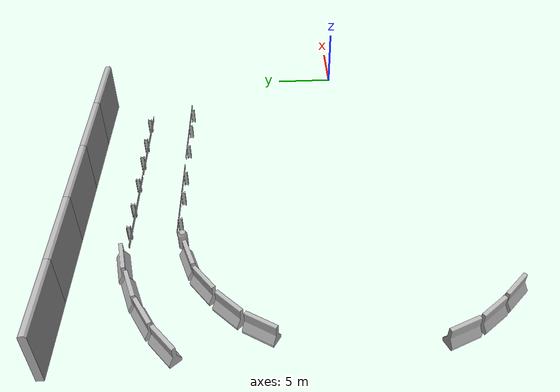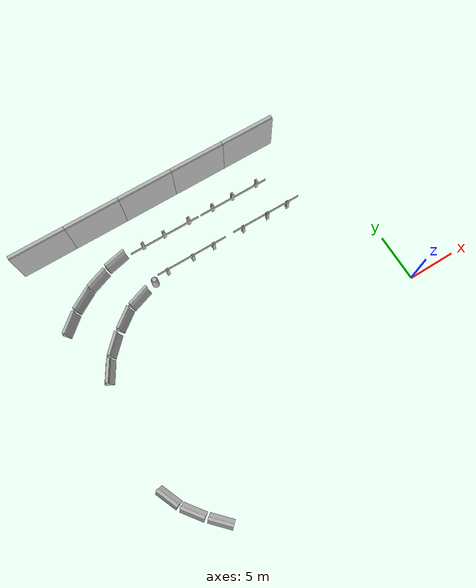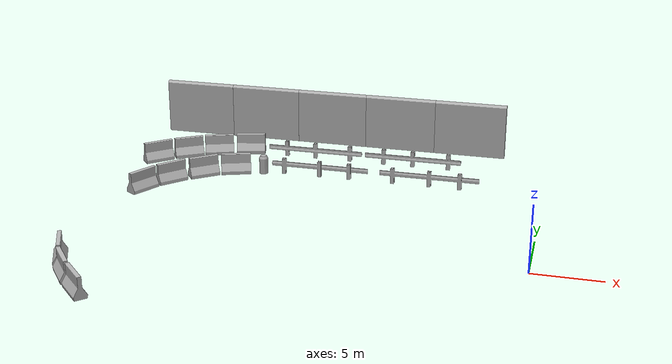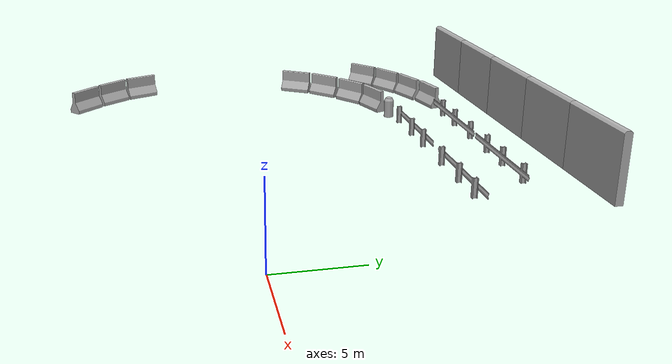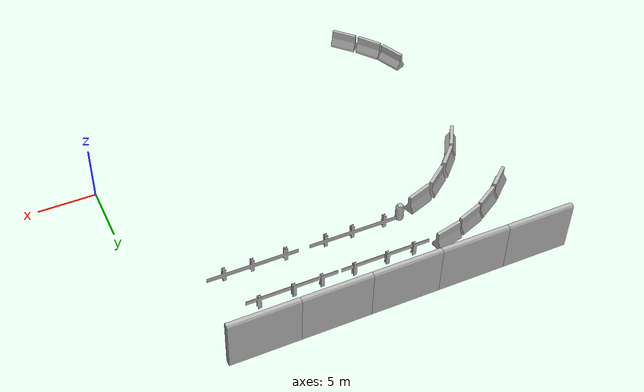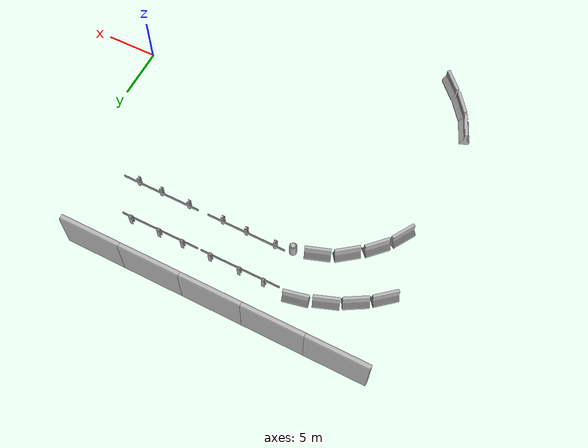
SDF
<sdf version="1.7">
 <world name="default">
  <model name="aws_robomaker_racetrack_CrashworthBucket_01_20">
   <frame name="aws_CrashworthBucket_01::__model__" attached_to="aws_CrashworthBucket_01::body">
    <pose relative_to="__model__">0 0 0 0 -0 0</pose>
   </frame>
   <link name="aws_CrashworthBucket_01::body">
    <pose relative_to="aws_CrashworthBucket_01::__model__">0 0 0 0 -0 0</pose>
    <inertial>
     <mass>5</mass>
     <inertia><ixx>1</ixx><ixy>0</ixy><ixz>0</ixz><iyy>1</iyy><iyz>0</iyz><izz>1</izz></inertia>
    </inertial>
    <visual name="visual">
     <geometry>
      <mesh>
       <uri>file://models/aws_robomaker_racetrack_CrashworthBucket_01/meshes/aws_CrashworthBucket_01_visual.DAE</uri>
      </mesh>
     </geometry>
     <material><shader type="pixel"><normal_map>__default__</normal_map></shader></material>
     <meta><layer>0</layer></meta>
    </visual>
    <collision name="collision_0">
     <geometry>
      <mesh>
       <uri>file://models/aws_robomaker_racetrack_CrashworthBucket_01/meshes/aws_CrashworthBucket_01_collision.DAE</uri>
       <scale>1 1 1</scale>
      </mesh>
     </geometry>
     <surface>
      <friction>
       <ode><mu>1</mu><mu2>1</mu2><fdir1>0 0 0</fdir1><slip1>0</slip1><slip2>0</slip2></ode>
       <torsional>
        <coefficient>1</coefficient>
        <patch_radius>0</patch_radius>
        <surface_radius>0</surface_radius>
        <use_patch_radius>1</use_patch_radius>
        <ode><slip>0</slip></ode>
       </torsional>
      </friction>
      <bounce><restitution_coefficient>0</restitution_coefficient><threshold>1e+06</threshold></bounce>
      <contact>
       <collide_without_contact>0</collide_without_contact>
       <collide_without_contact_bitmask>1</collide_without_contact_bitmask>
       <collide_bitmask>1</collide_bitmask>
       <ode>
        <soft_cfm>0</soft_cfm>
        <soft_erp>0.2</soft_erp>
        <kp>1e+13</kp>
        <kd>1</kd>
        <max_vel>0.01</max_vel>
        <min_depth>0</min_depth>
       </ode>
       <bullet>
        <split_impulse>1</split_impulse>
        <split_impulse_penetration_threshold>-0.01</split_impulse_penetration_threshold>
        <soft_cfm>0</soft_cfm>
        <soft_erp>0.2</soft_erp>
        <kp>1e+13</kp>
        <kd>1</kd>
       </bullet>
      </contact>
     </surface>
    </collision>
   </link>
   <static>1</static>
   <pose>-22.169 12.8311 0 0 -0 0</pose>
  </model>
  <model name="aws_robomaker_racetrack_Fence_01_02">
   <frame name="aws_Fence_01::__model__" attached_to="aws_Fence_01::body">
    <pose relative_to="__model__">0 0 0 0 -0 0</pose>
   </frame>
   <link name="aws_Fence_01::body">
    <pose relative_to="aws_Fence_01::__model__">0 0 0 0 -0 0</pose>
    <inertial>
     <mass>5</mass>
     <inertia><ixx>1</ixx><ixy>0</ixy><ixz>0</ixz><iyy>1</iyy><iyz>0</iyz><izz>1</izz></inertia>
    </inertial>
    <visual name="visual">
     <geometry>
      <mesh><uri>file://models/aws_robomaker_racetrack_Fence_01/meshes/aws_Fence_01_visual.DAE</uri></mesh>
     </geometry>
     <material><shader type="pixel"><normal_map>__default__</normal_map></shader></material>
     <meta><layer>0</layer></meta>
    </visual>
    <collision name="collision_0">
     <geometry>
      <mesh>
       <uri>file://models/aws_robomaker_racetrack_Fence_01/meshes/aws_Fence_01_collision.DAE</uri>
       <scale>1 1 1</scale>
      </mesh>
     </geometry>
     <surface>
      <friction>
       <ode><mu>1</mu><mu2>1</mu2><fdir1>0 0 0</fdir1><slip1>0</slip1><slip2>0</slip2></ode>
       <torsional>
        <coefficient>1</coefficient>
        <patch_radius>0</patch_radius>
        <surface_radius>0</surface_radius>
        <use_patch_radius>1</use_patch_radius>
        <ode><slip>0</slip></ode>
       </torsional>
      </friction>
      <bounce><restitution_coefficient>0</restitution_coefficient><threshold>1e+06</threshold></bounce>
      <contact>
       <collide_without_contact>0</collide_without_contact>
       <collide_without_contact_bitmask>1</collide_without_contact_bitmask>
       <collide_bitmask>1</collide_bitmask>
       <ode>
        <soft_cfm>0</soft_cfm>
        <soft_erp>0.2</soft_erp>
        <kp>1e+13</kp>
        <kd>1</kd>
        <max_vel>0.01</max_vel>
        <min_depth>0</min_depth>
       </ode>
       <bullet>
        <split_impulse>1</split_impulse>
        <split_impulse_penetration_threshold>-0.01</split_impulse_penetration_threshold>
        <soft_cfm>0</soft_cfm>
        <soft_erp>0.2</soft_erp>
        <kp>1e+13</kp>
        <kd>1</kd>
       </bullet>
      </contact>
     </surface>
    </collision>
   </link>
   <static>1</static>
   <pose>-8.89723 13.1587 0 0 0 -1.57272</pose>
  </model>
  <model name="aws_robomaker_racetrack_Fence_01_03">
   <frame name="aws_Fence_01::__model__" attached_to="aws_Fence_01::body">
    <pose relative_to="__model__">0 0 0 0 -0 0</pose>
   </frame>
   <link name="aws_Fence_01::body">
    <pose relative_to="aws_Fence_01::__model__">0 0 0 0 -0 0</pose>
    <inertial>
     <mass>5</mass>
     <inertia><ixx>1</ixx><ixy>0</ixy><ixz>0</ixz><iyy>1</iyy><iyz>0</iyz><izz>1</izz></inertia>
    </inertial>
    <visual name="visual">
     <geometry>
      <mesh><uri>file://models/aws_robomaker_racetrack_Fence_01/meshes/aws_Fence_01_visual.DAE</uri></mesh>
     </geometry>
     <material><shader type="pixel"><normal_map>__default__</normal_map></shader></material>
     <meta><layer>0</layer></meta>
    </visual>
    <collision name="collision_0">
     <geometry>
      <mesh>
       <uri>file://models/aws_robomaker_racetrack_Fence_01/meshes/aws_Fence_01_collision.DAE</uri>
       <scale>1 1 1</scale>
      </mesh>
     </geometry>
     <surface>
      <friction>
       <ode><mu>1</mu><mu2>1</mu2><fdir1>0 0 0</fdir1><slip1>0</slip1><slip2>0</slip2></ode>
       <torsional>
        <coefficient>1</coefficient>
        <patch_radius>0</patch_radius>
        <surface_radius>0</surface_radius>
        <use_patch_radius>1</use_patch_radius>
        <ode><slip>0</slip></ode>
       </torsional>
      </friction>
      <bounce><restitution_coefficient>0</restitution_coefficient><threshold>1e+06</threshold></bounce>
      <contact>
       <collide_without_contact>0</collide_without_contact>
       <collide_without_contact_bitmask>1</collide_without_contact_bitmask>
       <collide_bitmask>1</collide_bitmask>
       <ode>
        <soft_cfm>0</soft_cfm>
        <soft_erp>0.2</soft_erp>
        <kp>1e+13</kp>
        <kd>1</kd>
        <max_vel>0.01</max_vel>
        <min_depth>0</min_depth>
       </ode>
       <bullet>
        <split_impulse>1</split_impulse>
        <split_impulse_penetration_threshold>-0.01</split_impulse_penetration_threshold>
        <soft_cfm>0</soft_cfm>
        <soft_erp>0.2</soft_erp>
        <kp>1e+13</kp>
        <kd>1</kd>
       </bullet>
      </contact>
     </surface>
    </collision>
   </link>
   <static>1</static>
   <pose>-17.6812 13.1587 0 0 0 -1.57272</pose>
  </model>
  <model name="aws_robomaker_racetrack_Fence_01_12">
   <frame name="aws_Fence_01::__model__" attached_to="aws_Fence_01::body">
    <pose relative_to="__model__">0 0 0 0 -0 0</pose>
   </frame>
   <link name="aws_Fence_01::body">
    <pose relative_to="aws_Fence_01::__model__">0 0 0 0 -0 0</pose>
    <inertial>
     <mass>5</mass>
     <inertia><ixx>1</ixx><ixy>0</ixy><ixz>0</ixz><iyy>1</iyy><iyz>0</iyz><izz>1</izz></inertia>
    </inertial>
    <visual name="visual">
     <geometry>
      <mesh><uri>file://models/aws_robomaker_racetrack_Fence_01/meshes/aws_Fence_01_visual.DAE</uri></mesh>
     </geometry>
     <material><shader type="pixel"><normal_map>__default__</normal_map></shader></material>
     <meta><layer>0</layer></meta>
    </visual>
    <collision name="collision_0">
     <geometry>
      <mesh>
       <uri>file://models/aws_robomaker_racetrack_Fence_01/meshes/aws_Fence_01_collision.DAE</uri>
       <scale>1 1 1</scale>
      </mesh>
     </geometry>
     <surface>
      <friction>
       <ode><mu>1</mu><mu2>1</mu2><fdir1>0 0 0</fdir1><slip1>0</slip1><slip2>0</slip2></ode>
       <torsional>
        <coefficient>1</coefficient>
        <patch_radius>0</patch_radius>
        <surface_radius>0</surface_radius>
        <use_patch_radius>1</use_patch_radius>
        <ode><slip>0</slip></ode>
       </torsional>
      </friction>
      <bounce><restitution_coefficient>0</restitution_coefficient><threshold>1e+06</threshold></bounce>
      <contact>
       <collide_without_contact>0</collide_without_contact>
       <collide_without_contact_bitmask>1</collide_without_contact_bitmask>
       <collide_bitmask>1</collide_bitmask>
       <ode>
        <soft_cfm>0</soft_cfm>
        <soft_erp>0.2</soft_erp>
        <kp>1e+13</kp>
        <kd>1</kd>
        <max_vel>0.01</max_vel>
        <min_depth>0</min_depth>
       </ode>
       <bullet>
        <split_impulse>1</split_impulse>
        <split_impulse_penetration_threshold>-0.01</split_impulse_penetration_threshold>
        <soft_cfm>0</soft_cfm>
        <soft_erp>0.2</soft_erp>
        <kp>1e+13</kp>
        <kd>1</kd>
       </bullet>
      </contact>
     </surface>
    </collision>
   </link>
   <static>1</static>
   <pose>-18.8827 16.8189 0.054 0 -0 1.57158</pose>
  </model>
  <model name="aws_robomaker_racetrack_Fence_01_13">
   <frame name="aws_Fence_01::__model__" attached_to="aws_Fence_01::body">
    <pose relative_to="__model__">0 0 0 0 -0 0</pose>
   </frame>
   <link name="aws_Fence_01::body">
    <pose relative_to="aws_Fence_01::__model__">0 0 0 0 -0 0</pose>
    <inertial>
     <mass>5</mass>
     <inertia><ixx>1</ixx><ixy>0</ixy><ixz>0</ixz><iyy>1</iyy><iyz>0</iyz><izz>1</izz></inertia>
    </inertial>
    <visual name="visual">
     <geometry>
      <mesh><uri>file://models/aws_robomaker_racetrack_Fence_01/meshes/aws_Fence_01_visual.DAE</uri></mesh>
     </geometry>
     <material><shader type="pixel"><normal_map>__default__</normal_map></shader></material>
     <meta><layer>0</layer></meta>
    </visual>
    <collision name="collision_0">
     <geometry>
      <mesh>
       <uri>file://models/aws_robomaker_racetrack_Fence_01/meshes/aws_Fence_01_collision.DAE</uri>
       <scale>1 1 1</scale>
      </mesh>
     </geometry>
     <surface>
      <friction>
       <ode><mu>1</mu><mu2>1</mu2><fdir1>0 0 0</fdir1><slip1>0</slip1><slip2>0</slip2></ode>
       <torsional>
        <coefficient>1</coefficient>
        <patch_radius>0</patch_radius>
        <surface_radius>0</surface_radius>
        <use_patch_radius>1</use_patch_radius>
        <ode><slip>0</slip></ode>
       </torsional>
      </friction>
      <bounce><restitution_coefficient>0</restitution_coefficient><threshold>1e+06</threshold></bounce>
      <contact>
       <collide_without_contact>0</collide_without_contact>
       <collide_without_contact_bitmask>1</collide_without_contact_bitmask>
       <collide_bitmask>1</collide_bitmask>
       <ode>
        <soft_cfm>0</soft_cfm>
        <soft_erp>0.2</soft_erp>
        <kp>1e+13</kp>
        <kd>1</kd>
        <max_vel>0.01</max_vel>
        <min_depth>0</min_depth>
       </ode>
       <bullet>
        <split_impulse>1</split_impulse>
        <split_impulse_penetration_threshold>-0.01</split_impulse_penetration_threshold>
        <soft_cfm>0</soft_cfm>
        <soft_erp>0.2</soft_erp>
        <kp>1e+13</kp>
        <kd>1</kd>
       </bullet>
      </contact>
     </surface>
    </collision>
   </link>
   <static>1</static>
   <pose>-10.7761 16.8189 0.054 0 -0 1.57158</pose>
  </model>
  <model name="aws_robomaker_racetrack_StonePier_01_03">
   <frame name="aws_StonePier_01::__model__" attached_to="aws_StonePier_01::body">
    <pose relative_to="__model__">0 0 0 0 -0 0</pose>
   </frame>
   <link name="aws_StonePier_01::body">
    <pose relative_to="aws_StonePier_01::__model__">0 0 0 0 -0 0</pose>
    <inertial>
     <mass>10</mass>
     <inertia><ixx>0</ixx><ixy>0</ixy><ixz>0</ixz><iyy>0</iyy><iyz>0</iyz><izz>0</izz></inertia>
    </inertial>
    <visual name="visual">
     <geometry>
      <mesh><uri>file://models/aws_robomaker_racetrack_StonePier_01/meshes/aws_StonePier_01_visual.DAE</uri></mesh>
     </geometry>
     <material><shader type="pixel"><normal_map>__default__</normal_map></shader></material>
     <meta><layer>0</layer></meta>
    </visual>
    <collision name="collision_0">
     <geometry>
      <mesh>
       <uri>file://models/aws_robomaker_racetrack_StonePier_01/meshes/aws_StonePier_01_collision.DAE</uri>
       <scale>1 1 1</scale>
      </mesh>
     </geometry>
     <surface>
      <friction>
       <ode><mu>1</mu><mu2>1</mu2><fdir1>0 0 0</fdir1><slip1>0</slip1><slip2>0</slip2></ode>
       <torsional>
        <coefficient>1</coefficient>
        <patch_radius>0</patch_radius>
        <surface_radius>0</surface_radius>
        <use_patch_radius>1</use_patch_radius>
        <ode><slip>0</slip></ode>
       </torsional>
      </friction>
      <bounce><restitution_coefficient>0</restitution_coefficient><threshold>1e+06</threshold></bounce>
      <contact>
       <collide_without_contact>0</collide_without_contact>
       <collide_without_contact_bitmask>1</collide_without_contact_bitmask>
       <collide_bitmask>1</collide_bitmask>
       <ode>
        <soft_cfm>0</soft_cfm>
        <soft_erp>0.2</soft_erp>
        <kp>1e+13</kp>
        <kd>1</kd>
        <max_vel>0.01</max_vel>
        <min_depth>0</min_depth>
       </ode>
       <bullet>
        <split_impulse>1</split_impulse>
        <split_impulse_penetration_threshold>-0.01</split_impulse_penetration_threshold>
        <soft_cfm>0</soft_cfm>
        <soft_erp>0.2</soft_erp>
        <kp>1e+13</kp>
        <kd>1</kd>
       </bullet>
      </contact>
     </surface>
    </collision>
   </link>
   <static>1</static>
   <pose>-24.2891 12.2118 0.054 0 -0 0.334226</pose>
  </model>
  <model name="aws_robomaker_racetrack_StonePier_01_36">
   <frame name="aws_StonePier_01::__model__" attached_to="aws_StonePier_01::body">
    <pose relative_to="__model__">0 0 0 0 -0 0</pose>
   </frame>
   <link name="aws_StonePier_01::body">
    <pose relative_to="aws_StonePier_01::__model__">0 0 0 0 -0 0</pose>
    <inertial>
     <mass>10</mass>
     <inertia><ixx>0</ixx><ixy>0</ixy><ixz>0</ixz><iyy>0</iyy><iyz>0</iyz><izz>0</izz></inertia>
    </inertial>
    <visual name="visual">
     <geometry>
      <mesh><uri>file://models/aws_robomaker_racetrack_StonePier_01/meshes/aws_StonePier_01_visual.DAE</uri></mesh>
     </geometry>
     <material><shader type="pixel"><normal_map>__default__</normal_map></shader></material>
     <meta><layer>0</layer></meta>
    </visual>
    <collision name="collision_0">
     <geometry>
      <mesh>
       <uri>file://models/aws_robomaker_racetrack_StonePier_01/meshes/aws_StonePier_01_collision.DAE</uri>
       <scale>1 1 1</scale>
      </mesh>
     </geometry>
     <surface>
      <friction>
       <ode><mu>1</mu><mu2>1</mu2><fdir1>0 0 0</fdir1><slip1>0</slip1><slip2>0</slip2></ode>
       <torsional>
        <coefficient>1</coefficient>
        <patch_radius>0</patch_radius>
        <surface_radius>0</surface_radius>
        <use_patch_radius>1</use_patch_radius>
        <ode><slip>0</slip></ode>
       </torsional>
      </friction>
      <bounce><restitution_coefficient>0</restitution_coefficient><threshold>1e+06</threshold></bounce>
      <contact>
       <collide_without_contact>0</collide_without_contact>
       <collide_without_contact_bitmask>1</collide_without_contact_bitmask>
       <collide_bitmask>1</collide_bitmask>
       <ode>
        <soft_cfm>0</soft_cfm>
        <soft_erp>0.2</soft_erp>
        <kp>1e+13</kp>
        <kd>1</kd>
        <max_vel>0.01</max_vel>
        <min_depth>0</min_depth>
       </ode>
       <bullet>
        <split_impulse>1</split_impulse>
        <split_impulse_penetration_threshold>-0.01</split_impulse_penetration_threshold>
        <soft_cfm>0</soft_cfm>
        <soft_erp>0.2</soft_erp>
        <kp>1e+13</kp>
        <kd>1</kd>
       </bullet>
      </contact>
     </surface>
    </collision>
   </link>
   <static>1</static>
   <pose>-26.5946 11.0295 0.054 0 0.00036 0.646791</pose>
  </model>
  <model name="aws_robomaker_racetrack_StonePier_01_37">
   <frame name="aws_StonePier_01::__model__" attached_to="aws_StonePier_01::body">
    <pose relative_to="__model__">0 0 0 0 -0 0</pose>
   </frame>
   <link name="aws_StonePier_01::body">
    <pose relative_to="aws_StonePier_01::__model__">0 0 0 0 -0 0</pose>
    <inertial>
     <mass>10</mass>
     <inertia><ixx>0</ixx><ixy>0</ixy><ixz>0</ixz><iyy>0</iyy><iyz>0</iyz><izz>0</izz></inertia>
    </inertial>
    <visual name="visual">
     <geometry>
      <mesh><uri>file://models/aws_robomaker_racetrack_StonePier_01/meshes/aws_StonePier_01_visual.DAE</uri></mesh>
     </geometry>
     <material><shader type="pixel"><normal_map>__default__</normal_map></shader></material>
     <meta><layer>0</layer></meta>
    </visual>
    <collision name="collision_0">
     <geometry>
      <mesh>
       <uri>file://models/aws_robomaker_racetrack_StonePier_01/meshes/aws_StonePier_01_collision.DAE</uri>
       <scale>1 1 1</scale>
      </mesh>
     </geometry>
     <surface>
      <friction>
       <ode><mu>1</mu><mu2>1</mu2><fdir1>0 0 0</fdir1><slip1>0</slip1><slip2>0</slip2></ode>
       <torsional>
        <coefficient>1</coefficient>
        <patch_radius>0</patch_radius>
        <surface_radius>0</surface_radius>
        <use_patch_radius>1</use_patch_radius>
        <ode><slip>0</slip></ode>
       </torsional>
      </friction>
      <bounce><restitution_coefficient>0</restitution_coefficient><threshold>1e+06</threshold></bounce>
      <contact>
       <collide_without_contact>0</collide_without_contact>
       <collide_without_contact_bitmask>1</collide_without_contact_bitmask>
       <collide_bitmask>1</collide_bitmask>
       <ode>
        <soft_cfm>0</soft_cfm>
        <soft_erp>0.2</soft_erp>
        <kp>1e+13</kp>
        <kd>1</kd>
        <max_vel>0.01</max_vel>
        <min_depth>0</min_depth>
       </ode>
       <bullet>
        <split_impulse>1</split_impulse>
        <split_impulse_penetration_threshold>-0.01</split_impulse_penetration_threshold>
        <soft_cfm>0</soft_cfm>
        <soft_erp>0.2</soft_erp>
        <kp>1e+13</kp>
        <kd>1</kd>
       </bullet>
      </contact>
     </surface>
    </collision>
   </link>
   <static>1</static>
   <pose>-24.4271 16.8105 0.054 0 -0 0.217772</pose>
  </model>
  <model name="aws_robomaker_racetrack_StonePier_01_38">
   <frame name="aws_StonePier_01::__model__" attached_to="aws_StonePier_01::body">
    <pose relative_to="__model__">0 0 0 0 -0 0</pose>
   </frame>
   <link name="aws_StonePier_01::body">
    <pose relative_to="aws_StonePier_01::__model__">0 0 0 0 -0 0</pose>
    <inertial>
     <mass>10</mass>
     <inertia><ixx>0</ixx><ixy>0</ixy><ixz>0</ixz><iyy>0</iyy><iyz>0</iyz><izz>0</izz></inertia>
    </inertial>
    <visual name="visual">
     <geometry>
      <mesh><uri>file://models/aws_robomaker_racetrack_StonePier_01/meshes/aws_StonePier_01_visual.DAE</uri></mesh>
     </geometry>
     <material><shader type="pixel"><normal_map>__default__</normal_map></shader></material>
     <meta><layer>0</layer></meta>
    </visual>
    <collision name="collision_0">
     <geometry>
      <mesh>
       <uri>file://models/aws_robomaker_racetrack_StonePier_01/meshes/aws_StonePier_01_collision.DAE</uri>
       <scale>1 1 1</scale>
      </mesh>
     </geometry>
     <surface>
      <friction>
       <ode><mu>1</mu><mu2>1</mu2><fdir1>0 0 0</fdir1><slip1>0</slip1><slip2>0</slip2></ode>
       <torsional>
        <coefficient>1</coefficient>
        <patch_radius>0</patch_radius>
        <surface_radius>0</surface_radius>
        <use_patch_radius>1</use_patch_radius>
        <ode><slip>0</slip></ode>
       </torsional>
      </friction>
      <bounce><restitution_coefficient>0</restitution_coefficient><threshold>1e+06</threshold></bounce>
      <contact>
       <collide_without_contact>0</collide_without_contact>
       <collide_without_contact_bitmask>1</collide_without_contact_bitmask>
       <collide_bitmask>1</collide_bitmask>
       <ode>
        <soft_cfm>0</soft_cfm>
        <soft_erp>0.2</soft_erp>
        <kp>1e+13</kp>
        <kd>1</kd>
        <max_vel>0.01</max_vel>
        <min_depth>0</min_depth>
       </ode>
       <bullet>
        <split_impulse>1</split_impulse>
        <split_impulse_penetration_threshold>-0.01</split_impulse_penetration_threshold>
        <soft_cfm>0</soft_cfm>
        <soft_erp>0.2</soft_erp>
        <kp>1e+13</kp>
        <kd>1</kd>
       </bullet>
      </contact>
     </surface>
    </collision>
   </link>
   <static>1</static>
   <pose>-28.6752 9.30494 0.054 0 -0 0.789682</pose>
  </model>
  <model name="aws_robomaker_racetrack_StonePier_01_39">
   <frame name="aws_StonePier_01::__model__" attached_to="aws_StonePier_01::body">
    <pose relative_to="__model__">0 0 0 0 -0 0</pose>
   </frame>
   <link name="aws_StonePier_01::body">
    <pose relative_to="aws_StonePier_01::__model__">0 0 0 0 -0 0</pose>
    <inertial>
     <mass>10</mass>
     <inertia><ixx>0</ixx><ixy>0</ixy><ixz>0</ixz><iyy>0</iyy><iyz>0</iyz><izz>0</izz></inertia>
    </inertial>
    <visual name="visual">
     <geometry>
      <mesh><uri>file://models/aws_robomaker_racetrack_StonePier_01/meshes/aws_StonePier_01_visual.DAE</uri></mesh>
     </geometry>
     <material><shader type="pixel"><normal_map>__default__</normal_map></shader></material>
     <meta><layer>0</layer></meta>
    </visual>
    <collision name="collision_0">
     <geometry>
      <mesh>
       <uri>file://models/aws_robomaker_racetrack_StonePier_01/meshes/aws_StonePier_01_collision.DAE</uri>
       <scale>1 1 1</scale>
      </mesh>
     </geometry>
     <surface>
      <friction>
       <ode><mu>1</mu><mu2>1</mu2><fdir1>0 0 0</fdir1><slip1>0</slip1><slip2>0</slip2></ode>
       <torsional>
        <coefficient>1</coefficient>
        <patch_radius>0</patch_radius>
        <surface_radius>0</surface_radius>
        <use_patch_radius>1</use_patch_radius>
        <ode><slip>0</slip></ode>
       </torsional>
      </friction>
      <bounce><restitution_coefficient>0</restitution_coefficient><threshold>1e+06</threshold></bounce>
      <contact>
       <collide_without_contact>0</collide_without_contact>
       <collide_without_contact_bitmask>1</collide_without_contact_bitmask>
       <collide_bitmask>1</collide_bitmask>
       <ode>
        <soft_cfm>0</soft_cfm>
        <soft_erp>0.2</soft_erp>
        <kp>1e+13</kp>
        <kd>1</kd>
        <max_vel>0.01</max_vel>
        <min_depth>0</min_depth>
       </ode>
       <bullet>
        <split_impulse>1</split_impulse>
        <split_impulse_penetration_threshold>-0.01</split_impulse_penetration_threshold>
        <soft_cfm>0</soft_cfm>
        <soft_erp>0.2</soft_erp>
        <kp>1e+13</kp>
        <kd>1</kd>
       </bullet>
      </contact>
     </surface>
    </collision>
   </link>
   <static>1</static>
   <pose>-30.2584 7.24451 0.054 0 -0 1.02306</pose>
  </model>
  <model name="aws_robomaker_racetrack_StonePier_01_42">
   <frame name="aws_StonePier_01::__model__" attached_to="aws_StonePier_01::body">
    <pose relative_to="__model__">0 0 0 0 -0 0</pose>
   </frame>
   <link name="aws_StonePier_01::body">
    <pose relative_to="aws_StonePier_01::__model__">0 0 0 0 -0 0</pose>
    <inertial>
     <mass>10</mass>
     <inertia><ixx>0</ixx><ixy>0</ixy><ixz>0</ixz><iyy>0</iyy><iyz>0</iyz><izz>0</izz></inertia>
    </inertial>
    <visual name="visual">
     <geometry>
      <mesh><uri>file://models/aws_robomaker_racetrack_StonePier_01/meshes/aws_StonePier_01_visual.DAE</uri></mesh>
     </geometry>
     <material><shader type="pixel"><normal_map>__default__</normal_map></shader></material>
     <meta><layer>0</layer></meta>
    </visual>
    <collision name="collision_0">
     <geometry>
      <mesh>
       <uri>file://models/aws_robomaker_racetrack_StonePier_01/meshes/aws_StonePier_01_collision.DAE</uri>
       <scale>1 1 1</scale>
      </mesh>
     </geometry>
     <surface>
      <friction>
       <ode><mu>1</mu><mu2>1</mu2><fdir1>0 0 0</fdir1><slip1>0</slip1><slip2>0</slip2></ode>
       <torsional>
        <coefficient>1</coefficient>
        <patch_radius>0</patch_radius>
        <surface_radius>0</surface_radius>
        <use_patch_radius>1</use_patch_radius>
        <ode><slip>0</slip></ode>
       </torsional>
      </friction>
      <bounce><restitution_coefficient>0</restitution_coefficient><threshold>1e+06</threshold></bounce>
      <contact>
       <collide_without_contact>0</collide_without_contact>
       <collide_without_contact_bitmask>1</collide_without_contact_bitmask>
       <collide_bitmask>1</collide_bitmask>
       <ode>
        <soft_cfm>0</soft_cfm>
        <soft_erp>0.2</soft_erp>
        <kp>1e+13</kp>
        <kd>1</kd>
        <max_vel>0.01</max_vel>
        <min_depth>0</min_depth>
       </ode>
       <bullet>
        <split_impulse>1</split_impulse>
        <split_impulse_penetration_threshold>-0.01</split_impulse_penetration_threshold>
        <soft_cfm>0</soft_cfm>
        <soft_erp>0.2</soft_erp>
        <kp>1e+13</kp>
        <kd>1</kd>
       </bullet>
      </contact>
     </surface>
    </collision>
   </link>
   <static>1</static>
   <pose>-28.1466 -9.75745 0.054 0 0 -0.811127</pose>
  </model>
  <model name="aws_robomaker_racetrack_StonePier_01_43">
   <frame name="aws_StonePier_01::__model__" attached_to="aws_StonePier_01::body">
    <pose relative_to="__model__">0 0 0 0 -0 0</pose>
   </frame>
   <link name="aws_StonePier_01::body">
    <pose relative_to="aws_StonePier_01::__model__">0 0 0 0 -0 0</pose>
    <inertial>
     <mass>10</mass>
     <inertia><ixx>0</ixx><ixy>0</ixy><ixz>0</ixz><iyy>0</iyy><iyz>0</iyz><izz>0</izz></inertia>
    </inertial>
    <visual name="visual">
     <geometry>
      <mesh><uri>file://models/aws_robomaker_racetrack_StonePier_01/meshes/aws_StonePier_01_visual.DAE</uri></mesh>
     </geometry>
     <material><shader type="pixel"><normal_map>__default__</normal_map></shader></material>
     <meta><layer>0</layer></meta>
    </visual>
    <collision name="collision_0">
     <geometry>
      <mesh>
       <uri>file://models/aws_robomaker_racetrack_StonePier_01/meshes/aws_StonePier_01_collision.DAE</uri>
       <scale>1 1 1</scale>
      </mesh>
     </geometry>
     <surface>
      <friction>
       <ode><mu>1</mu><mu2>1</mu2><fdir1>0 0 0</fdir1><slip1>0</slip1><slip2>0</slip2></ode>
       <torsional>
        <coefficient>1</coefficient>
        <patch_radius>0</patch_radius>
        <surface_radius>0</surface_radius>
        <use_patch_radius>1</use_patch_radius>
        <ode><slip>0</slip></ode>
       </torsional>
      </friction>
      <bounce><restitution_coefficient>0</restitution_coefficient><threshold>1e+06</threshold></bounce>
      <contact>
       <collide_without_contact>0</collide_without_contact>
       <collide_without_contact_bitmask>1</collide_without_contact_bitmask>
       <collide_bitmask>1</collide_bitmask>
       <ode>
        <soft_cfm>0</soft_cfm>
        <soft_erp>0.2</soft_erp>
        <kp>1e+13</kp>
        <kd>1</kd>
        <max_vel>0.01</max_vel>
        <min_depth>0</min_depth>
       </ode>
       <bullet>
        <split_impulse>1</split_impulse>
        <split_impulse_penetration_threshold>-0.01</split_impulse_penetration_threshold>
        <soft_cfm>0</soft_cfm>
        <soft_erp>0.2</soft_erp>
        <kp>1e+13</kp>
        <kd>1</kd>
       </bullet>
      </contact>
     </surface>
    </collision>
   </link>
   <static>1</static>
   <pose>-29.8572 -7.79098 0.054 0 0 -0.924577</pose>
  </model>
  <model name="aws_robomaker_racetrack_StonePier_01_44">
   <frame name="aws_StonePier_01::__model__" attached_to="aws_StonePier_01::body">
    <pose relative_to="__model__">0 0 0 0 -0 0</pose>
   </frame>
   <link name="aws_StonePier_01::body">
    <pose relative_to="aws_StonePier_01::__model__">0 0 0 0 -0 0</pose>
    <inertial>
     <mass>10</mass>
     <inertia><ixx>0</ixx><ixy>0</ixy><ixz>0</ixz><iyy>0</iyy><iyz>0</iyz><izz>0</izz></inertia>
    </inertial>
    <visual name="visual">
     <geometry>
      <mesh><uri>file://models/aws_robomaker_racetrack_StonePier_01/meshes/aws_StonePier_01_visual.DAE</uri></mesh>
     </geometry>
     <material><shader type="pixel"><normal_map>__default__</normal_map></shader></material>
     <meta><layer>0</layer></meta>
    </visual>
    <collision name="collision_0">
     <geometry>
      <mesh>
       <uri>file://models/aws_robomaker_racetrack_StonePier_01/meshes/aws_StonePier_01_collision.DAE</uri>
       <scale>1 1 1</scale>
      </mesh>
     </geometry>
     <surface>
      <friction>
       <ode><mu>1</mu><mu2>1</mu2><fdir1>0 0 0</fdir1><slip1>0</slip1><slip2>0</slip2></ode>
       <torsional>
        <coefficient>1</coefficient>
        <patch_radius>0</patch_radius>
        <surface_radius>0</surface_radius>
        <use_patch_radius>1</use_patch_radius>
        <ode><slip>0</slip></ode>
       </torsional>
      </friction>
      <bounce><restitution_coefficient>0</restitution_coefficient><threshold>1e+06</threshold></bounce>
      <contact>
       <collide_without_contact>0</collide_without_contact>
       <collide_without_contact_bitmask>1</collide_without_contact_bitmask>
       <collide_bitmask>1</collide_bitmask>
       <ode>
        <soft_cfm>0</soft_cfm>
        <soft_erp>0.2</soft_erp>
        <kp>1e+13</kp>
        <kd>1</kd>
        <max_vel>0.01</max_vel>
        <min_depth>0</min_depth>
       </ode>
       <bullet>
        <split_impulse>1</split_impulse>
        <split_impulse_penetration_threshold>-0.01</split_impulse_penetration_threshold>
        <soft_cfm>0</soft_cfm>
        <soft_erp>0.2</soft_erp>
        <kp>1e+13</kp>
        <kd>1</kd>
       </bullet>
      </contact>
     </surface>
    </collision>
   </link>
   <static>1</static>
   <pose>-31.1336 -5.56451 0.054 0 0 -1.16956</pose>
  </model>
  <model name="aws_robomaker_racetrack_StonePier_01_65">
   <frame name="aws_StonePier_01::__model__" attached_to="aws_StonePier_01::body">
    <pose relative_to="__model__">0 0 0 0 -0 0</pose>
   </frame>
   <link name="aws_StonePier_01::body">
    <pose relative_to="aws_StonePier_01::__model__">0 0 0 0 -0 0</pose>
    <inertial>
     <mass>10</mass>
     <inertia><ixx>0</ixx><ixy>0</ixy><ixz>0</ixz><iyy>0</iyy><iyz>0</iyz><izz>0</izz></inertia>
    </inertial>
    <visual name="visual">
     <geometry>
      <mesh><uri>file://models/aws_robomaker_racetrack_StonePier_01/meshes/aws_StonePier_01_visual.DAE</uri></mesh>
     </geometry>
     <material><shader type="pixel"><normal_map>__default__</normal_map></shader></material>
     <meta><layer>0</layer></meta>
    </visual>
    <collision name="collision_0">
     <geometry>
      <mesh>
       <uri>file://models/aws_robomaker_racetrack_StonePier_01/meshes/aws_StonePier_01_collision.DAE</uri>
       <scale>1 1 1</scale>
      </mesh>
     </geometry>
     <surface>
      <friction>
       <ode><mu>1</mu><mu2>1</mu2><fdir1>0 0 0</fdir1><slip1>0</slip1><slip2>0</slip2></ode>
       <torsional>
        <coefficient>1</coefficient>
        <patch_radius>0</patch_radius>
        <surface_radius>0</surface_radius>
        <use_patch_radius>1</use_patch_radius>
        <ode><slip>0</slip></ode>
       </torsional>
      </friction>
      <bounce><restitution_coefficient>0</restitution_coefficient><threshold>1e+06</threshold></bounce>
      <contact>
       <collide_without_contact>0</collide_without_contact>
       <collide_without_contact_bitmask>1</collide_without_contact_bitmask>
       <collide_bitmask>1</collide_bitmask>
       <ode>
        <soft_cfm>0</soft_cfm>
        <soft_erp>0.2</soft_erp>
        <kp>1e+13</kp>
        <kd>1</kd>
        <max_vel>0.01</max_vel>
        <min_depth>0</min_depth>
       </ode>
       <bullet>
        <split_impulse>1</split_impulse>
        <split_impulse_penetration_threshold>-0.01</split_impulse_penetration_threshold>
        <soft_cfm>0</soft_cfm>
        <soft_erp>0.2</soft_erp>
        <kp>1e+13</kp>
        <kd>1</kd>
       </bullet>
      </contact>
     </surface>
    </collision>
   </link>
   <static>1</static>
   <pose>-31.2882 13.312 0.054 0 -0 0.701782</pose>
  </model>
  <model name="aws_robomaker_racetrack_StonePier_01_66">
   <frame name="aws_StonePier_01::__model__" attached_to="aws_StonePier_01::body">
    <pose relative_to="__model__">0 0 0 0 -0 0</pose>
   </frame>
   <link name="aws_StonePier_01::body">
    <pose relative_to="aws_StonePier_01::__model__">0 0 0 0 -0 0</pose>
    <inertial>
     <mass>10</mass>
     <inertia><ixx>0</ixx><ixy>0</ixy><ixz>0</ixz><iyy>0</iyy><iyz>0</iyz><izz>0</izz></inertia>
    </inertial>
    <visual name="visual">
     <geometry>
      <mesh><uri>file://models/aws_robomaker_racetrack_StonePier_01/meshes/aws_StonePier_01_visual.DAE</uri></mesh>
     </geometry>
     <material><shader type="pixel"><normal_map>__default__</normal_map></shader></material>
     <meta><layer>0</layer></meta>
    </visual>
    <collision name="collision_0">
     <geometry>
      <mesh>
       <uri>file://models/aws_robomaker_racetrack_StonePier_01/meshes/aws_StonePier_01_collision.DAE</uri>
       <scale>1 1 1</scale>
      </mesh>
     </geometry>
     <surface>
      <friction>
       <ode><mu>1</mu><mu2>1</mu2><fdir1>0 0 0</fdir1><slip1>0</slip1><slip2>0</slip2></ode>
       <torsional>
        <coefficient>1</coefficient>
        <patch_radius>0</patch_radius>
        <surface_radius>0</surface_radius>
        <use_patch_radius>1</use_patch_radius>
        <ode><slip>0</slip></ode>
       </torsional>
      </friction>
      <bounce><restitution_coefficient>0</restitution_coefficient><threshold>1e+06</threshold></bounce>
      <contact>
       <collide_without_contact>0</collide_without_contact>
       <collide_without_contact_bitmask>1</collide_without_contact_bitmask>
       <collide_bitmask>1</collide_bitmask>
       <ode>
        <soft_cfm>0</soft_cfm>
        <soft_erp>0.2</soft_erp>
        <kp>1e+13</kp>
        <kd>1</kd>
        <max_vel>0.01</max_vel>
        <min_depth>0</min_depth>
       </ode>
       <bullet>
        <split_impulse>1</split_impulse>
        <split_impulse_penetration_threshold>-0.01</split_impulse_penetration_threshold>
        <soft_cfm>0</soft_cfm>
        <soft_erp>0.2</soft_erp>
        <kp>1e+13</kp>
        <kd>1</kd>
       </bullet>
      </contact>
     </surface>
    </collision>
   </link>
   <static>1</static>
   <pose>-29.1909 14.829 0.054 0 -0 0.529025</pose>
  </model>
  <model name="aws_robomaker_racetrack_StonePier_01_67">
   <frame name="aws_StonePier_01::__model__" attached_to="aws_StonePier_01::body">
    <pose relative_to="__model__">0 0 0 0 -0 0</pose>
   </frame>
   <link name="aws_StonePier_01::body">
    <pose relative_to="aws_StonePier_01::__model__">0 0 0 0 -0 0</pose>
    <inertial>
     <mass>10</mass>
     <inertia><ixx>0</ixx><ixy>0</ixy><ixz>0</ixz><iyy>0</iyy><iyz>0</iyz><izz>0</izz></inertia>
    </inertial>
    <visual name="visual">
     <geometry>
      <mesh><uri>file://models/aws_robomaker_racetrack_StonePier_01/meshes/aws_StonePier_01_visual.DAE</uri></mesh>
     </geometry>
     <material><shader type="pixel"><normal_map>__default__</normal_map></shader></material>
     <meta><layer>0</layer></meta>
    </visual>
    <collision name="collision_0">
     <geometry>
      <mesh>
       <uri>file://models/aws_robomaker_racetrack_StonePier_01/meshes/aws_StonePier_01_collision.DAE</uri>
       <scale>1 1 1</scale>
      </mesh>
     </geometry>
     <surface>
      <friction>
       <ode><mu>1</mu><mu2>1</mu2><fdir1>0 0 0</fdir1><slip1>0</slip1><slip2>0</slip2></ode>
       <torsional>
        <coefficient>1</coefficient>
        <patch_radius>0</patch_radius>
        <surface_radius>0</surface_radius>
        <use_patch_radius>1</use_patch_radius>
        <ode><slip>0</slip></ode>
       </torsional>
      </friction>
      <bounce><restitution_coefficient>0</restitution_coefficient><threshold>1e+06</threshold></bounce>
      <contact>
       <collide_without_contact>0</collide_without_contact>
       <collide_without_contact_bitmask>1</collide_without_contact_bitmask>
       <collide_bitmask>1</collide_bitmask>
       <ode>
        <soft_cfm>0</soft_cfm>
        <soft_erp>0.2</soft_erp>
        <kp>1e+13</kp>
        <kd>1</kd>
        <max_vel>0.01</max_vel>
        <min_depth>0</min_depth>
       </ode>
       <bullet>
        <split_impulse>1</split_impulse>
        <split_impulse_penetration_threshold>-0.01</split_impulse_penetration_threshold>
        <soft_cfm>0</soft_cfm>
        <soft_erp>0.2</soft_erp>
        <kp>1e+13</kp>
        <kd>1</kd>
       </bullet>
      </contact>
     </surface>
    </collision>
   </link>
   <static>1</static>
   <pose>-26.9181 15.9588 0.054 0 -0 0.349577</pose>
  </model>
  <model name="aws_robomaker_racetrack_Wall_01_03">
   <frame name="aws_Wall_01::__model__" attached_to="aws_Wall_01::body">
    <pose relative_to="__model__">0 0 0 0 -0 0</pose>
   </frame>
   <link name="aws_Wall_01::body">
    <pose relative_to="aws_Wall_01::__model__">0 0 0 0 -0 0</pose>
    <inertial>
     <mass>500</mass>
     <inertia><ixx>1</ixx><ixy>0</ixy><ixz>0</ixz><iyy>1</iyy><iyz>0</iyz><izz>1</izz></inertia>
    </inertial>
    <visual name="visual">
     <geometry>
      <mesh>
       <uri>file://models/aws_robomaker_racetrack_Wall_01/meshes/aws_Wall_01_visual.DAE</uri>
       <scale>2.59853 2.59853 2.59853</scale>
      </mesh>
     </geometry>
     <material><shader type="pixel"><normal_map>__default__</normal_map></shader></material>
     <meta><layer>1</layer></meta>
    </visual>
    <collision name="collision_0">
     <geometry>
      <mesh>
       <uri>file://models/aws_robomaker_racetrack_Wall_01/meshes/aws_Wall_01_collision.DAE</uri>
       <scale>2.59853 2.59853 2.59853</scale>
      </mesh>
     </geometry>
     <surface>
      <friction>
       <ode><mu>1</mu><mu2>1</mu2><fdir1>0 0 0</fdir1><slip1>0</slip1><slip2>0</slip2></ode>
       <torsional>
        <coefficient>1</coefficient>
        <patch_radius>0</patch_radius>
        <surface_radius>0</surface_radius>
        <use_patch_radius>1</use_patch_radius>
        <ode><slip>0</slip></ode>
       </torsional>
      </friction>
      <bounce><restitution_coefficient>0</restitution_coefficient><threshold>1e+06</threshold></bounce>
      <contact>
       <collide_without_contact>0</collide_without_contact>
       <collide_without_contact_bitmask>1</collide_without_contact_bitmask>
       <collide_bitmask>1</collide_bitmask>
       <ode>
        <soft_cfm>0</soft_cfm>
        <soft_erp>0.2</soft_erp>
        <kp>1e+13</kp>
        <kd>1</kd>
        <max_vel>0.01</max_vel>
        <min_depth>0</min_depth>
       </ode>
       <bullet>
        <split_impulse>1</split_impulse>
        <split_impulse_penetration_threshold>-0.01</split_impulse_penetration_threshold>
        <soft_cfm>0</soft_cfm>
        <soft_erp>0.2</soft_erp>
        <kp>1e+13</kp>
        <kd>1</kd>
       </bullet>
      </contact>
     </surface>
    </collision>
   </link>
   <static>1</static>
   <pose>-6.71068 20.6834 0 0 -0 0</pose>
  </model>
  <model name="aws_robomaker_racetrack_Wall_01_04">
   <frame name="aws_Wall_01::__model__" attached_to="aws_Wall_01::body">
    <pose relative_to="__model__">0 0 0 0 -0 0</pose>
   </frame>
   <link name="aws_Wall_01::body">
    <pose relative_to="aws_Wall_01::__model__">0 0 0 0 -0 0</pose>
    <inertial>
     <mass>500</mass>
     <inertia><ixx>1</ixx><ixy>0</ixy><ixz>0</ixz><iyy>1</iyy><iyz>0</iyz><izz>1</izz></inertia>
    </inertial>
    <visual name="visual">
     <geometry>
      <mesh>
       <uri>file://models/aws_robomaker_racetrack_Wall_01/meshes/aws_Wall_01_visual.DAE</uri>
       <scale>2.59853 2.59853 2.59853</scale>
      </mesh>
     </geometry>
     <material><shader type="pixel"><normal_map>__default__</normal_map></shader></material>
     <meta><layer>1</layer></meta>
    </visual>
    <collision name="collision_0">
     <geometry>
      <mesh>
       <uri>file://models/aws_robomaker_racetrack_Wall_01/meshes/aws_Wall_01_collision.DAE</uri>
       <scale>2.59853 2.59853 2.59853</scale>
      </mesh>
     </geometry>
     <surface>
      <friction>
       <ode><mu>1</mu><mu2>1</mu2><fdir1>0 0 0</fdir1><slip1>0</slip1><slip2>0</slip2></ode>
       <torsional>
        <coefficient>1</coefficient>
        <patch_radius>0</patch_radius>
        <surface_radius>0</surface_radius>
        <use_patch_radius>1</use_patch_radius>
        <ode><slip>0</slip></ode>
       </torsional>
      </friction>
      <bounce><restitution_coefficient>0</restitution_coefficient><threshold>1e+06</threshold></bounce>
      <contact>
       <collide_without_contact>0</collide_without_contact>
       <collide_without_contact_bitmask>1</collide_without_contact_bitmask>
       <collide_bitmask>1</collide_bitmask>
       <ode>
        <soft_cfm>0</soft_cfm>
        <soft_erp>0.2</soft_erp>
        <kp>1e+13</kp>
        <kd>1</kd>
        <max_vel>0.01</max_vel>
        <min_depth>0</min_depth>
       </ode>
       <bullet>
        <split_impulse>1</split_impulse>
        <split_impulse_penetration_threshold>-0.01</split_impulse_penetration_threshold>
        <soft_cfm>0</soft_cfm>
        <soft_erp>0.2</soft_erp>
        <kp>1e+13</kp>
        <kd>1</kd>
       </bullet>
      </contact>
     </surface>
    </collision>
   </link>
   <static>1</static>
   <pose>-12.5489 20.683 0 0 -0 0</pose>
  </model>
  <model name="aws_robomaker_racetrack_Wall_01_05">
   <frame name="aws_Wall_01::__model__" attached_to="aws_Wall_01::body">
    <pose relative_to="__model__">0 0 0 0 -0 0</pose>
   </frame>
   <link name="aws_Wall_01::body">
    <pose relative_to="aws_Wall_01::__model__">0 0 0 0 -0 0</pose>
    <inertial>
     <mass>500</mass>
     <inertia><ixx>1</ixx><ixy>0</ixy><ixz>0</ixz><iyy>1</iyy><iyz>0</iyz><izz>1</izz></inertia>
    </inertial>
    <visual name="visual">
     <geometry>
      <mesh>
       <uri>file://models/aws_robomaker_racetrack_Wall_01/meshes/aws_Wall_01_visual.DAE</uri>
       <scale>2.59853 2.59853 2.59853</scale>
      </mesh>
     </geometry>
     <material><shader type="pixel"><normal_map>__default__</normal_map></shader></material>
     <meta><layer>1</layer></meta>
    </visual>
    <collision name="collision_0">
     <geometry>
      <mesh>
       <uri>file://models/aws_robomaker_racetrack_Wall_01/meshes/aws_Wall_01_collision.DAE</uri>
       <scale>2.59853 2.59853 2.59853</scale>
      </mesh>
     </geometry>
     <surface>
      <friction>
       <ode><mu>1</mu><mu2>1</mu2><fdir1>0 0 0</fdir1><slip1>0</slip1><slip2>0</slip2></ode>
       <torsional>
        <coefficient>1</coefficient>
        <patch_radius>0</patch_radius>
        <surface_radius>0</surface_radius>
        <use_patch_radius>1</use_patch_radius>
        <ode><slip>0</slip></ode>
       </torsional>
      </friction>
      <bounce><restitution_coefficient>0</restitution_coefficient><threshold>1e+06</threshold></bounce>
      <contact>
       <collide_without_contact>0</collide_without_contact>
       <collide_without_contact_bitmask>1</collide_without_contact_bitmask>
       <collide_bitmask>1</collide_bitmask>
       <ode>
        <soft_cfm>0</soft_cfm>
        <soft_erp>0.2</soft_erp>
        <kp>1e+13</kp>
        <kd>1</kd>
        <max_vel>0.01</max_vel>
        <min_depth>0</min_depth>
       </ode>
       <bullet>
        <split_impulse>1</split_impulse>
        <split_impulse_penetration_threshold>-0.01</split_impulse_penetration_threshold>
        <soft_cfm>0</soft_cfm>
        <soft_erp>0.2</soft_erp>
        <kp>1e+13</kp>
        <kd>1</kd>
       </bullet>
      </contact>
     </surface>
    </collision>
   </link>
   <static>1</static>
   <pose>-18.3809 20.685 0 0 -0 0</pose>
  </model>
  <model name="aws_robomaker_racetrack_Wall_01_06">
   <frame name="aws_Wall_01::__model__" attached_to="aws_Wall_01::body">
    <pose relative_to="__model__">0 0 0 0 -0 0</pose>
   </frame>
   <link name="aws_Wall_01::body">
    <pose relative_to="aws_Wall_01::__model__">0 0 0 0 -0 0</pose>
    <inertial>
     <mass>500</mass>
     <inertia><ixx>1</ixx><ixy>0</ixy><ixz>0</ixz><iyy>1</iyy><iyz>0</iyz><izz>1</izz></inertia>
    </inertial>
    <visual name="visual">
     <geometry>
      <mesh>
       <uri>file://models/aws_robomaker_racetrack_Wall_01/meshes/aws_Wall_01_visual.DAE</uri>
       <scale>2.59853 2.59853 2.59853</scale>
      </mesh>
     </geometry>
     <material><shader type="pixel"><normal_map>__default__</normal_map></shader></material>
     <meta><layer>1</layer></meta>
    </visual>
    <collision name="collision_0">
     <geometry>
      <mesh>
       <uri>file://models/aws_robomaker_racetrack_Wall_01/meshes/aws_Wall_01_collision.DAE</uri>
       <scale>2.59853 2.59853 2.59853</scale>
      </mesh>
     </geometry>
     <surface>
      <friction>
       <ode><mu>1</mu><mu2>1</mu2><fdir1>0 0 0</fdir1><slip1>0</slip1><slip2>0</slip2></ode>
       <torsional>
        <coefficient>1</coefficient>
        <patch_radius>0</patch_radius>
        <surface_radius>0</surface_radius>
        <use_patch_radius>1</use_patch_radius>
        <ode><slip>0</slip></ode>
       </torsional>
      </friction>
      <bounce><restitution_coefficient>0</restitution_coefficient><threshold>1e+06</threshold></bounce>
      <contact>
       <collide_without_contact>0</collide_without_contact>
       <collide_without_contact_bitmask>1</collide_without_contact_bitmask>
       <collide_bitmask>1</collide_bitmask>
       <ode>
        <soft_cfm>0</soft_cfm>
        <soft_erp>0.2</soft_erp>
        <kp>1e+13</kp>
        <kd>1</kd>
        <max_vel>0.01</max_vel>
        <min_depth>0</min_depth>
       </ode>
       <bullet>
        <split_impulse>1</split_impulse>
        <split_impulse_penetration_threshold>-0.01</split_impulse_penetration_threshold>
        <soft_cfm>0</soft_cfm>
        <soft_erp>0.2</soft_erp>
        <kp>1e+13</kp>
        <kd>1</kd>
       </bullet>
      </contact>
     </surface>
    </collision>
   </link>
   <static>1</static>
   <pose>-24.2154 20.6835 0 0 -0 0</pose>
  </model>
  <model name="aws_robomaker_racetrack_Wall_01_07">
   <frame name="aws_Wall_01::__model__" attached_to="aws_Wall_01::body">
    <pose relative_to="__model__">0 0 0 0 -0 0</pose>
   </frame>
   <link name="aws_Wall_01::body">
    <pose relative_to="aws_Wall_01::__model__">0 0 0 0 -0 0</pose>
    <inertial>
     <mass>500</mass>
     <inertia><ixx>1</ixx><ixy>0</ixy><ixz>0</ixz><iyy>1</iyy><iyz>0</iyz><izz>1</izz></inertia>
    </inertial>
    <visual name="visual">
     <geometry>
      <mesh>
       <uri>file://models/aws_robomaker_racetrack_Wall_01/meshes/aws_Wall_01_visual.DAE</uri>
       <scale>2.59853 2.59853 2.59853</scale>
      </mesh>
     </geometry>
     <material><shader type="pixel"><normal_map>__default__</normal_map></shader></material>
     <meta><layer>1</layer></meta>
    </visual>
    <collision name="collision_0">
     <geometry>
      <mesh>
       <uri>file://models/aws_robomaker_racetrack_Wall_01/meshes/aws_Wall_01_collision.DAE</uri>
       <scale>2.59853 2.59853 2.59853</scale>
      </mesh>
     </geometry>
     <surface>
      <friction>
       <ode><mu>1</mu><mu2>1</mu2><fdir1>0 0 0</fdir1><slip1>0</slip1><slip2>0</slip2></ode>
       <torsional>
        <coefficient>1</coefficient>
        <patch_radius>0</patch_radius>
        <surface_radius>0</surface_radius>
        <use_patch_radius>1</use_patch_radius>
        <ode><slip>0</slip></ode>
       </torsional>
      </friction>
      <bounce><restitution_coefficient>0</restitution_coefficient><threshold>1e+06</threshold></bounce>
      <contact>
       <collide_without_contact>0</collide_without_contact>
       <collide_without_contact_bitmask>1</collide_without_contact_bitmask>
       <collide_bitmask>1</collide_bitmask>
       <ode>
        <soft_cfm>0</soft_cfm>
        <soft_erp>0.2</soft_erp>
        <kp>1e+13</kp>
        <kd>1</kd>
        <max_vel>0.01</max_vel>
        <min_depth>0</min_depth>
       </ode>
       <bullet>
        <split_impulse>1</split_impulse>
        <split_impulse_penetration_threshold>-0.01</split_impulse_penetration_threshold>
        <soft_cfm>0</soft_cfm>
        <soft_erp>0.2</soft_erp>
        <kp>1e+13</kp>
        <kd>1</kd>
       </bullet>
      </contact>
     </surface>
    </collision>
   </link>
   <static>1</static>
   <pose>-30.0218 20.682 0 0 -0 0</pose>
  </model>
  <model name="ground_plane">
   <pose>0 0 -191268 0 -0 0</pose>
   <link name="link">
    <pose>0 0 -1 0 -0 0</pose>
    <inertial>
     <inertia><ixx>1</ixx><ixy>0</ixy><ixz>0</ixz><iyy>1</iyy><iyz>0</iyz><izz>1</izz></inertia>
     <mass>1</mass>
    </inertial>
    <velocity>0 0 0 0 -0 0</velocity>
    <acceleration>0 0 0 0 -0 0</acceleration>
   </link>
   <scale>1 1 1</scale>
  </model>
 </world>
</sdf>
